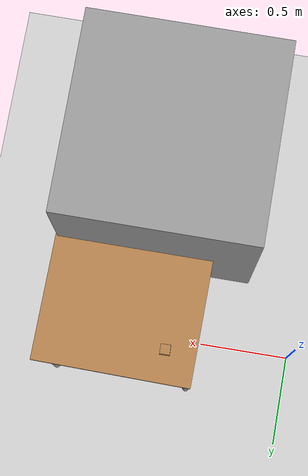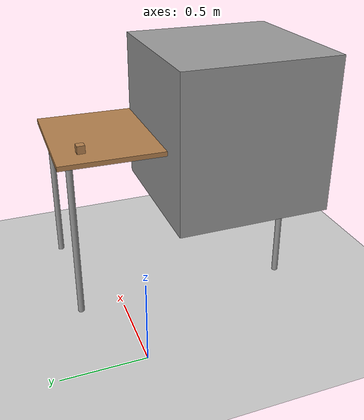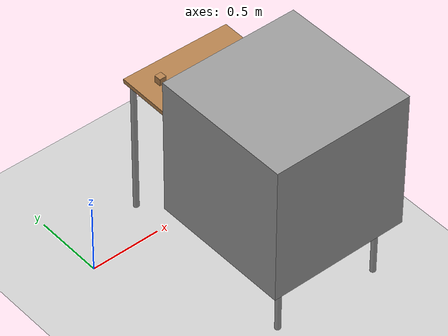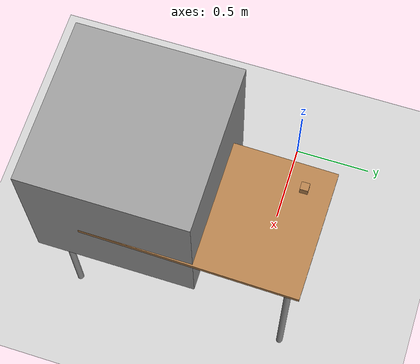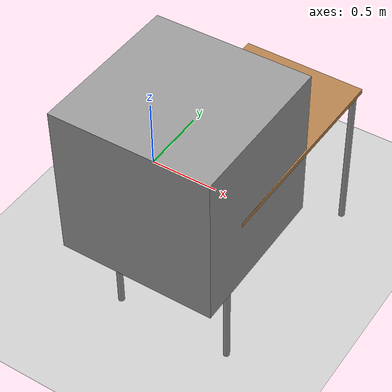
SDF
<sdf version="1.4">
 <world name="default">
  <model name="ground_plane">
   <static>1</static>
   <link name="link">
    <collision name="collision">
     <geometry><plane><normal>0 0 1</normal><size>100 100</size></plane></geometry>
     <surface><friction><ode><mu>100</mu><mu2>50</mu2></ode></friction></surface>
    </collision>
    <visual name="visual">
     <cast_shadows>0</cast_shadows>
     <geometry><plane><normal>0 0 1</normal><size>100 100</size></plane></geometry>
     <material>
      <script><uri>file://media/materials/scripts/gazebo.material</uri><name>Gazebo/Grey</name></script>
     </material>
    </visual>
    <velocity_decay><linear>0</linear><angular>0</angular></velocity_decay>
   </link>
  </model>
  <light name="sun" type="directional">
   <pose>0 0 10 0 -0 0</pose>
   <diffuse>0.8 0.8 0.8 1</diffuse>
   <specular>0.2 0.2 0.2 1</specular>
   <attenuation>
    <range>1000</range>
    <constant>0.9</constant>
    <linear>0.01</linear>
    <quadratic>0.001</quadratic>
   </attenuation>
   <direction>-0.5 0.1 -0.9</direction>
  </light>
  <physics type="ode">
   <real_time_update_rate>1000</real_time_update_rate>
   <gravity>0 0 -9.81</gravity>
   <max_step_size>0.001</max_step_size>
   <real_time_factor>1</real_time_factor>
  </physics>
  <scene><ambient>0.4 0.4 0.4 1</ambient><background>0.7 0.7 0.7 1</background><shadows>1</shadows></scene>
  <spherical_coordinates>
   <surface_model>EARTH_WGS84</surface_model>
   <latitude_deg>0</latitude_deg>
   <longitude_deg>0</longitude_deg>
   <elevation>0</elevation>
   <heading_deg>0</heading_deg>
  </spherical_coordinates>
  <model name="table">
   <static>1</static>
   <link name="link">
    <collision name="surface">
     <pose>0 0 1 0 -0 0</pose>
     <geometry><box><size>1.5 0.8 0.03</size></box></geometry>
     <surface><friction><ode><mu>0.6</mu><mu2>0.6</mu2></ode></friction></surface>
    </collision>
    <visual name="visual1">
     <pose>0 0 1 0 -0 0</pose>
     <geometry><box><size>1.5 0.8 0.03</size></box></geometry>
     <material>
      <script><uri>file://media/materials/scripts/gazebo.material</uri><name>Gazebo/Wood</name></script>
     </material>
    </visual>
    <collision name="front_left_leg">
     <pose>0.68 0.38 0.5 0 -0 0</pose>
     <geometry><cylinder><radius>0.02</radius><length>1</length></cylinder></geometry>
    </collision>
    <visual name="front_left_leg">
     <pose>0.68 0.38 0.5 0 -0 0</pose>
     <geometry><cylinder><radius>0.02</radius><length>1</length></cylinder></geometry>
     <material>
      <script><uri>file://media/materials/scripts/gazebo.material</uri><name>Gazebo/Grey</name></script>
     </material>
    </visual>
    <collision name="front_right_leg">
     <pose>0.68 -0.38 0.5 0 -0 0</pose>
     <geometry><cylinder><radius>0.02</radius><length>1</length></cylinder></geometry>
    </collision>
    <visual name="front_right_leg">
     <pose>0.68 -0.38 0.5 0 -0 0</pose>
     <geometry><cylinder><radius>0.02</radius><length>1</length></cylinder></geometry>
     <material>
      <script><uri>file://media/materials/scripts/gazebo.material</uri><name>Gazebo/Grey</name></script>
     </material>
    </visual>
    <collision name="back_right_leg">
     <pose>-0.68 -0.38 0.5 0 -0 0</pose>
     <geometry><cylinder><radius>0.02</radius><length>1</length></cylinder></geometry>
    </collision>
    <visual name="back_right_leg">
     <pose>-0.68 -0.38 0.5 0 -0 0</pose>
     <geometry><cylinder><radius>0.02</radius><length>1</length></cylinder></geometry>
     <material>
      <script><uri>file://media/materials/scripts/gazebo.material</uri><name>Gazebo/Grey</name></script>
     </material>
    </visual>
    <collision name="back_left_leg">
     <pose>-0.68 0.38 0.5 0 -0 0</pose>
     <geometry><cylinder><radius>0.02</radius><length>1</length></cylinder></geometry>
    </collision>
    <visual name="back_left_leg">
     <pose>-0.68 0.38 0.5 0 -0 0</pose>
     <geometry><cylinder><radius>0.02</radius><length>1</length></cylinder></geometry>
     <material>
      <script><uri>file://media/materials/scripts/gazebo.material</uri><name>Gazebo/Grey</name></script>
     </material>
    </visual>
    <velocity_decay><linear>0</linear><angular>0</angular></velocity_decay>
   </link>
   <pose>0.91778 -0.42075 0 0 0 -1.58572</pose>
  </model>
  <model name="wood_cube_5cm">
   <link name="link">
    <pose>0 0 0.025 0 -0 0</pose>
    <inertial>
     <mass>0.0565</mass>
     <inertia>
      <ixx>2.35417e-05</ixx>
      <ixy>0</ixy>
      <ixz>0</ixz>
      <iyy>2.35417e-05</iyy>
      <iyz>0</iyz>
      <izz>2.35417e-05</izz>
     </inertia>
    </inertial>
    <collision name="collision">
     <geometry><box><size>0.05 0.05 0.05</size></box></geometry>
     <surface><contact><ode><max_vel>0.1</max_vel><min_depth>0.001</min_depth></ode></contact></surface>
    </collision>
    <visual name="visual">
     <geometry><box><size>0.05 0.05 0.05</size></box></geometry>
     <material>
      <script><uri>file://media/materials/scripts/gazebo.material</uri><name>Gazebo/Wood</name></script>
     </material>
    </visual>
    <velocity_decay><linear>0</linear><angular>0</angular></velocity_decay>
   </link>
   <pose>0.681198 0.169128 1.01497 0.00081 -1.4e-05 0.011724</pose>
   <static>0</static>
  </model>
  <model name="wood_cube_5cm_0">
   <link name="link">
    <pose>0 0 0.025 0 -0 0</pose>
    <inertial>
     <mass>0.0565</mass>
     <inertia>
      <ixx>2.35417e-05</ixx>
      <ixy>0</ixy>
      <ixz>0</ixz>
      <iyy>2.35417e-05</iyy>
      <iyz>0</iyz>
      <izz>2.35417e-05</izz>
     </inertia>
    </inertial>
    <collision name="collision">
     <geometry><box><size>0.05 0.05 0.05</size></box></geometry>
     <surface><contact><ode><max_vel>0.1</max_vel><min_depth>0.001</min_depth></ode></contact></surface>
    </collision>
    <visual name="visual">
     <geometry><box><size>0.05 0.05 0.05</size></box></geometry>
     <material>
      <script><uri>file://media/materials/scripts/gazebo.material</uri><name>Gazebo/Wood</name></script>
     </material>
    </visual>
    <velocity_decay><linear>0</linear><angular>0</angular></velocity_decay>
   </link>
   <pose>0.825105 -1.02415 1.015 -5.1e-05 5.1e-05 -6e-06</pose>
   <static>0</static>
  </model>
  <model name="wood_cube_5cm_1">
   <link name="link">
    <pose>0 0 0.025 0 -0 0</pose>
    <inertial>
     <mass>0.0565</mass>
     <inertia>
      <ixx>2.35417e-05</ixx>
      <ixy>0</ixy>
      <ixz>0</ixz>
      <iyy>2.35417e-05</iyy>
      <iyz>0</iyz>
      <izz>2.35417e-05</izz>
     </inertia>
    </inertial>
    <collision name="collision">
     <geometry><box><size>0.05 0.05 0.05</size></box></geometry>
     <surface><contact><ode><max_vel>0.1</max_vel><min_depth>0.001</min_depth></ode></contact></surface>
    </collision>
    <visual name="visual">
     <geometry><box><size>0.05 0.05 0.05</size></box></geometry>
     <material>
      <script><uri>file://media/materials/scripts/gazebo.material</uri><name>Gazebo/Wood</name></script>
     </material>
    </visual>
    <velocity_decay><linear>0</linear><angular>0</angular></velocity_decay>
   </link>
   <pose>0.801906 -0.913217 1.03976 1.56854 -1.56518 1.57299</pose>
   <static>0</static>
  </model>
  <model name="wood_cube_5cm_2">
   <link name="link">
    <pose>0 0 0.025 0 -0 0</pose>
    <inertial>
     <mass>0.0565</mass>
     <inertia>
      <ixx>2.35417e-05</ixx>
      <ixy>0</ixy>
      <ixz>0</ixz>
      <iyy>2.35417e-05</iyy>
      <iyz>0</iyz>
      <izz>2.35417e-05</izz>
     </inertia>
    </inertial>
    <collision name="collision">
     <geometry><box><size>0.05 0.05 0.05</size></box></geometry>
     <surface><contact><ode><max_vel>0.1</max_vel><min_depth>0.001</min_depth></ode></contact></surface>
    </collision>
    <visual name="visual">
     <geometry><box><size>0.05 0.05 0.05</size></box></geometry>
     <material>
      <script><uri>file://media/materials/scripts/gazebo.material</uri><name>Gazebo/Green</name></script>
     </material>
    </visual>
    <velocity_decay><linear>0</linear><angular>0</angular></velocity_decay>
   </link>
   <pose>0.89156 -0.979158 1.01483 0.003669 -9.6e-05 0.014864</pose>
   <static>0</static>
  </model>
  <model name="cricket_ball">
   <link name="link">
    <pose>0 0 0.0375 0 -0 0</pose>
    <inertial>
     <mass>0.1467</mass>
     <inertia>
      <ixx>8.25187e-05</ixx>
      <ixy>0</ixy>
      <ixz>0</ixz>
      <iyy>8.25187e-05</iyy>
      <iyz>0</iyz>
      <izz>8.25187e-05</izz>
     </inertia>
    </inertial>
    <collision name="collision"><geometry><sphere><radius>0.0375</radius></sphere></geometry></collision>
    <visual name="visual">
     <geometry><sphere><radius>0.0375</radius></sphere></geometry>
     <material>
      <script><uri>file://media/materials/scripts/gazebo.material</uri><name>Gazebo/Red</name></script>
     </material>
    </visual>
    <velocity_decay><linear>0</linear><angular>0.005</angular></velocity_decay>
   </link>
   <pose>0.990005 -0.928446 1.01815 -0.378094 0.170008 0.11628</pose>
   <static>0</static>
  </model>
  <model name="unit_box_2">
   <pose>0.809211 -0.808343 1.04557 0.000111 -0.00043 -1.8e-05</pose>
   <link name="link">
    <inertial>
     <mass>1</mass>
     <inertia><ixx>1</ixx><ixy>0</ixy><ixz>0</ixz><iyy>1</iyy><iyz>0</iyz><izz>1</izz></inertia>
    </inertial>
    <collision name="collision">
     <geometry><box><size>0.061317 0.054046 0.061108</size></box></geometry>
    </collision>
    <visual name="visual">
     <geometry><box><size>1 1 1</size></box></geometry>
     <material>
      <script><uri>file://media/materials/scripts/gazebo.material</uri><name>Gazebo/Grey</name></script>
     </material>
    </visual>
    <velocity_decay><linear>0</linear><angular>0</angular></velocity_decay>
   </link>
   <static>0</static>
  </model>
 </world>
</sdf>
